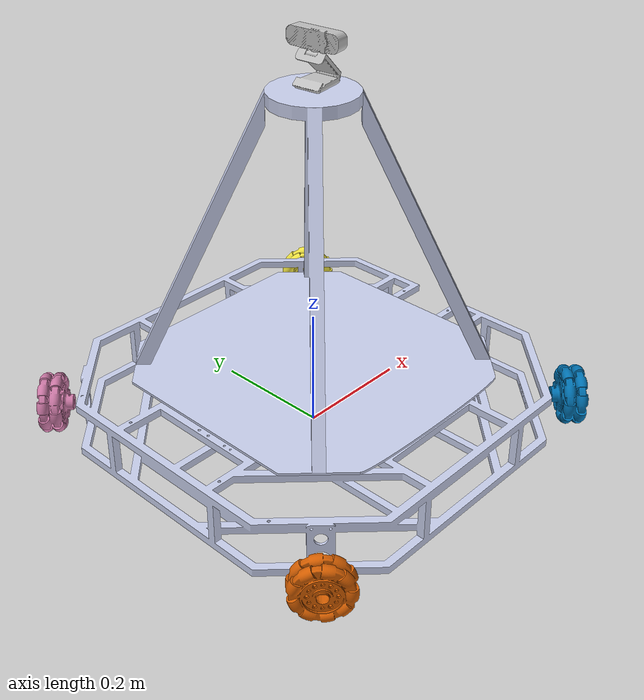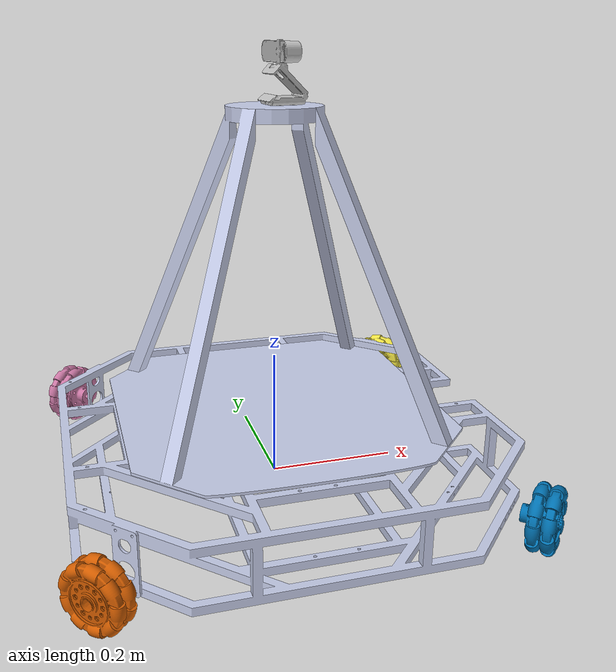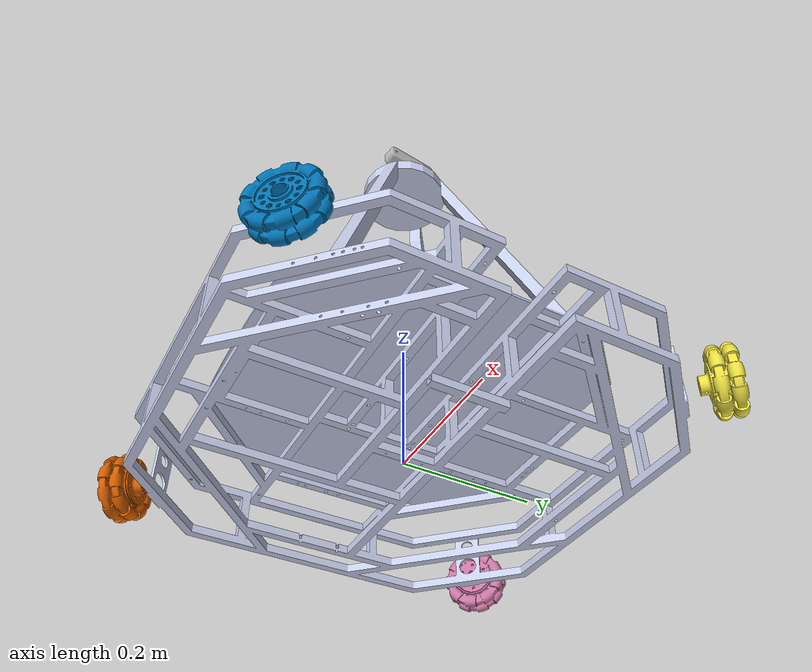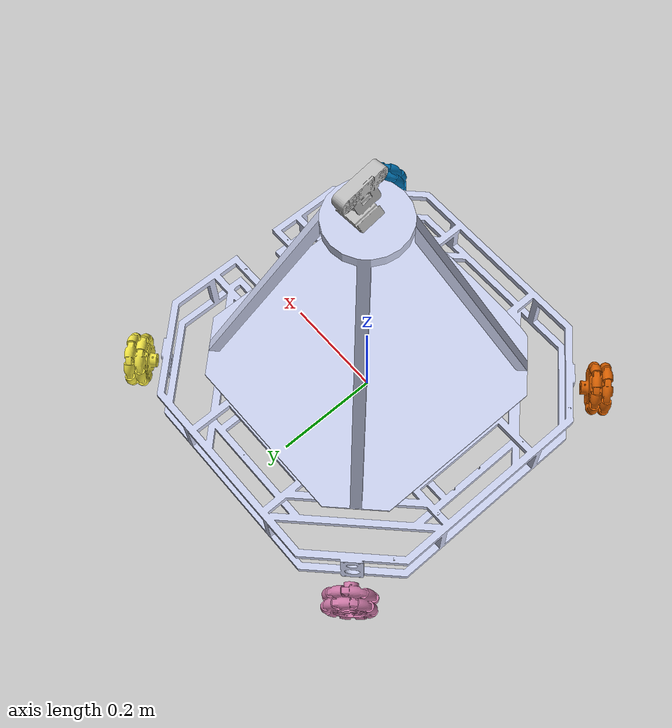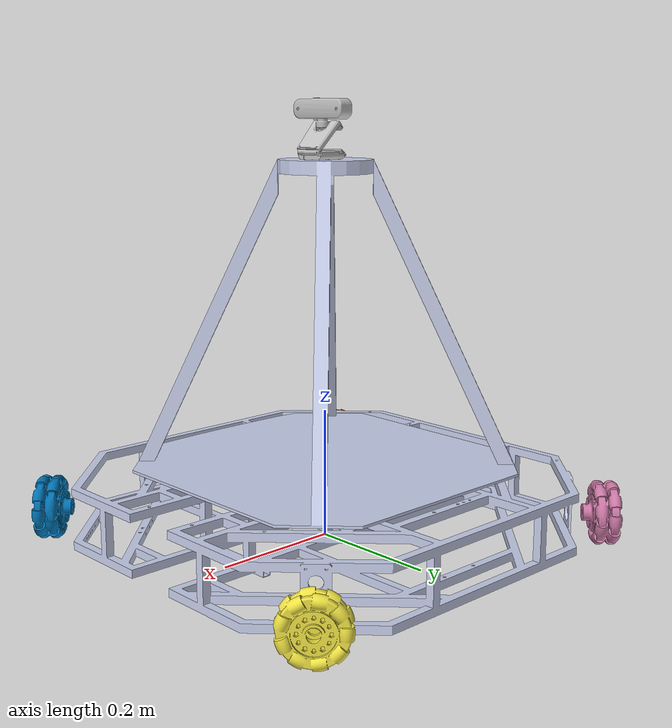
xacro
<?xml version="1.0"?>
<robot xmlns:xacro="http://www.ros.org/wiki/xacro" name="final">

	<xacro:include filename="$(find final_description)/xacro/gazebo.urdf.xacro"/>
	<xacro:include filename="$(find final_description)/xacro/wheel.urdf.xacro" />
	<xacro:include filename="$(find final_description)/xacro/camera.urdf.xacro" />

	<link name="origin_link"/>
	<link name="base_link">
	<inertial>
		<mass value="0.443904097826017"/>
		<inertia
			ixx="0.0128815665938208"
            ixy="-0.000108823075691167"
            ixz="1.09592346108527E-05"
            iyy="0.0153938926364957"
            iyz="2.60023505950379E-07"
            izz="0.0280566311336355"/>
	</inertial>
	<visual>
		<geometry>
			<mesh filename="package://final_description/meshes/base_link.STL" />
		</geometry>
		<material
            name="">
            <color
              rgba="0.792156862745098 0.819607843137255 0.933333333333333 1" />
        </material>

	</visual>
	<collision>
		<geometry>
			<mesh filename="package://final_description/meshes/base_link.STL" />
		</geometry>
	</collision>

	</link>

	<joint name="base_joint" type="fixed">
		<parent link="origin_link" />
		<child link="base_link" />
		<origin xyz="0 0 0.02"/>
	</joint>

	<xacro:omni_wheel wheel_prefix="front_right">
		<origin xyz="0.28084 0.28084 0.0212" rpy="1.5708 0 2.3563"/>
	</xacro:omni_wheel>
	<xacro:omni_wheel wheel_prefix="front_left">
		<origin xyz="0.28084 -0.28084 0.0212" rpy="1.5708 0 0.7854"/>
	</xacro:omni_wheel>
	<xacro:omni_wheel wheel_prefix="back_left">
		<origin xyz="-0.28084 -0.28084 0.0212" rpy="1.5708 0 -0.7854"/>
	</xacro:omni_wheel>
	<xacro:omni_wheel wheel_prefix="back_right">
		<origin xyz="-0.28084 0.28084 0.0212" rpy="-1.5708 0 0.7854"/>
	</xacro:omni_wheel>

  	<joint name="body_joint" type="fixed">
  		<parent link="base_link"/>
  		<child link="body_link"/>
  		<origin xyz="0 0 0.03" rpy="1.57 0 1000"/>
  	</joint>

  	<link name="body_link">
      	<inertial>
      		<mass value="0.1" />
      		<origin xyz="0 0 0" rpy="0 0 0" />
      		<inertia 	ixx="0.000056443" ixy="0.0" ixz="0.0"
               			iyy="0.0012923047" iyz="0.0"
               			izz="0.000113232" />
    	</inertial>
  	</link>

	<link name="base2_link">
		<inertial>
		<origin
			xyz="-5.53627679116264E-05 -0.0012727983100087 0.153777210791196"
			rpy="0 0 0" />
		<mass
			value="2.00324911916193" />
		<inertia
			ixx="0.0960582368968012"
			ixy="0.00107802559720345"
			ixz="-1.21764240635392E-05"
			iyy="0.0954939713935128"
			iyz="-0.000397573344765787"
			izz="0.0608742796614766" />
		</inertial>
		<visual>
		<origin
			xyz="0 0 0"
			rpy="0 0 0" />
		<geometry>
			<mesh
			filename="package://soccer_3/meshes/base2_link.STL" />
		</geometry>
		<material
			name="">
			<color
			rgba="0.792156862745098 0.819607843137255 0.933333333333333 1" />
		</material>
		</visual>
		<collision>
		<origin
			xyz="0 0 0"
			rpy="0 0 0" />
		<geometry>
			<mesh
			filename="package://soccer_3/meshes/base2_link.STL" />
		</geometry>
		</collision>
	</link>
	<joint
		name="base2"
		type="fixed">
		<origin
		xyz="0 0 0.1"
		rpy="0 0 0" />
		<parent
		link="base_link" />
		<child
		link="base2_link" />
		<axis
		xyz="0 0 0" />
	</joint>

</robot>

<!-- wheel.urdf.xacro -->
<robot xmlns:xacro="http://ros.org/wiki/xacro" name="husky_wheel">

	<xacro:macro name="omni_wheel" params="wheel_prefix *joint_pose">
		<link name="${wheel_prefix}_wheel_link">
			<inertial>
				<mass value="0.575037119313077" />
				<origin xyz="0 0 0" />
				<inertia  ixx="0.00467" ixy="0" ixz="0" iyy="0.00411" iyz="0" izz="0.00467" />
			</inertial>
			<visual>
				<origin xyz="0 0 0" rpy="0 0 0" />
				<geometry>
					<mesh filename="package://final_description/meshes/wheel_1.STL" />
				</geometry>
			</visual>
			<collision>
				<origin xyz="0 0 0" rpy="0 0 0" />
				<geometry>
					<mesh filename="package://final_description/meshes/wheel_1.STL" />
				</geometry>
				<surface>
					<bounce restitution_coefficient="0.0001" />
				</surface>
			</collision>
		</link>

		<gazebo reference="${wheel_prefix}_wheel_link">
			<mu1 value="0.20"/>
			<mu2 value="1.5"/>
			<kp value="10000000.0" />
			<kd value="10000.0" />
			<fdir1 value="0 0 1"/>
			<maxContacts value= "1"/>
		</gazebo>

		<joint name="${wheel_prefix}_wheel" type="continuous">
			<parent link="base_link"/>
			<child link="${wheel_prefix}_wheel_link"/>
			<xacro:insert_block name="joint_pose"/>
			<axis xyz="0 0 1" rpy="0 0 0" />
		</joint>

		<transmission name="${wheel_prefix}_wheel_trans" type="SimpleTransmission">
			<type>transmission_interface/SimpleTransmission</type>
			<actuator name="${wheel_prefix}_wheel_motor">
				<mechanicalReduction>1</mechanicalReduction>
			</actuator>
			<joint name="${wheel_prefix}_wheel">
				<hardwareInterface>hardware_interface/VelocityJointInterface</hardwareInterface>
			</joint>
		</transmission>

	</xacro:macro>
</robot>

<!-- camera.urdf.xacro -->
<robot xmlns:xacro="http://www.ros.org/wiki/xacro">

  <link name="camera_link">
    <visual>
      <origin xyz="0 0 0" rpy="0 0 -1.5708"/>
      <geometry>
        <mesh filename="package://soccer_3/meshes/camera_Link.STL" scale="1 1 1"/>
      </geometry>
      <material name="">
        <color rgba="0.75 0.75 0.75 1.0"/>
      </material>
    </visual>

    <collision>
      <origin xyz="0 0 0" rpy="0 0 -1.5708"/>
      <geometry>
        <mesh filename="package://soccer_3/meshes/camera_Link.STL" scale="1 1 1"/>
      </geometry>
    </collision>

    <inertial>
      <origin xyz="0.000589207936300129 -0.0128570576510844 -0.0167997695311907" rpy="0 0 -1.5708"/>
      <mass value="0.1"/>
      <inertia  ixx="1.32900276151448E-05"
        ixy="-1.88152021020128E-06"
        ixz="8.18738104319757E-08"
        iyy="4.71418333933568E-05"
        iyz="-1.36629216190221E-06"
        izz="4.95502027950492E-05"/>
    </inertial>
  </link>

  <joint name="camera_joint" type="fixed">
    <origin xyz="-0.000171500140926373 0.00336097004609937 0.632166259306042"
            rpy="0 0 3.2" />
    <parent link="base_link"/>
    <child link="camera_link"/>
  </joint>

  <gazebo reference="camera_link">
    <material>Gazebo/Green</material>
    <sensor type="camera" name="camera1">
      <update_rate>10.0</update_rate>
      <camera name="head">
        <horizontal_fov>1.3962634</horizontal_fov>
          <image>
            <width>800</width>
            <height>600</height>
            <format>R8G8B8</format>
          </image>
          <clip>
            <near>0.02</near>
            <far>300</far>
          </clip>
          <noise>
            <type>gaussian</type>
            <mean>0.0</mean>
            <stddev>0.007</stddev>
          </noise>
        </camera>

        <plugin name="camera_controller" filename="libgazebo_ros_camera.so">
          <alwaysOn>true</alwaysOn>
          <updateRate>0.0</updateRate>
          <cameraName>final/camera1</cameraName>
          <imageTopicName>image_raw</imageTopicName>
          <cameraInfoTopicName>camera_info</cameraInfoTopicName>
          <frameName>webcam</frameName>
          <hackBaseline>0.0</hackBaseline>
          <distortionK1>0.0</distortionK1>
          <distortionK2>0.0</distortionK2>
          <distortionK3>0.0</distortionK3>
          <distortionT1>0.0</distortionT1>
          <distortionT2>0.0</distortionT2>
        </plugin>
      </sensor>
  </gazebo>

</robot>
